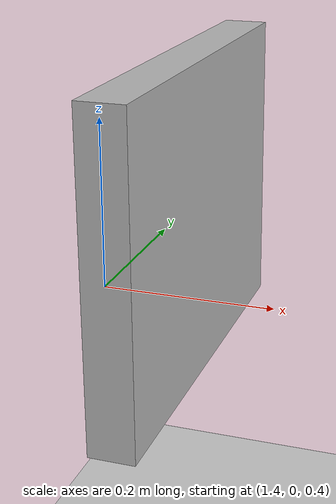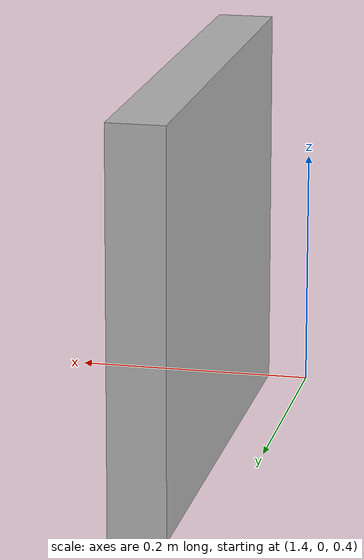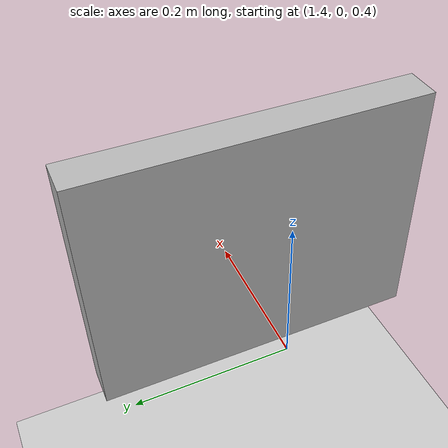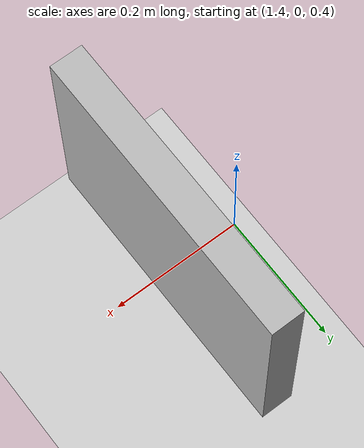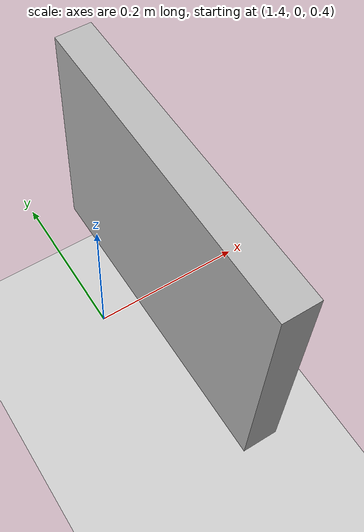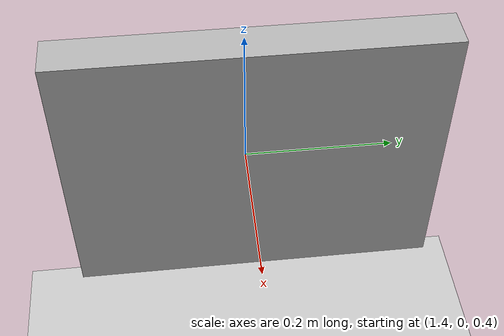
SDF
<sdf version="1.5">
 <world name="default">
  <light name="sun" type="directional">
   <pose>0 0 10 0 -0 0</pose>
   <diffuse>0.8 0.8 0.8 1</diffuse>
   <specular>0.2 0.2 0.2 1</specular>
   <attenuation>
    <range>1000</range>
    <constant>0.9</constant>
    <linear>0.01</linear>
    <quadratic>0.001</quadratic>
   </attenuation>
   <direction>-0.5 0.1 -0.9</direction>
  </light>
  <model name="ground_plane">
   <static>1</static>
   <link name="link">
    <collision name="collision">
     <geometry><plane><normal>0 0 1</normal><size>100 100</size></plane></geometry>
     <surface><friction><ode><mu>100</mu><mu2>50</mu2></ode></friction></surface>
    </collision>
    <visual name="visual">
     <cast_shadows>0</cast_shadows>
     <geometry><plane><normal>0 0 1</normal><size>100 100</size></plane></geometry>
     <material>
      <script><uri>file://media/materials/scripts/gazebo.material</uri><name>Gazebo/Grey</name></script>
     </material>
    </visual>
    <velocity_decay><linear>0</linear><angular>0</angular></velocity_decay>
   </link>
  </model>
  <physics type="ode">
   <max_step_size>0.001</max_step_size>
   <real_time_factor>1</real_time_factor>
   <real_time_update_rate>1000</real_time_update_rate>
   <gravity>0 0 -9.8</gravity>
   <magnetic_field>5.5645e-06 2.28758e-05 -4.23884e-05</magnetic_field>
  </physics>
  <scene><ambient>0.4 0.4 0.4 1</ambient><background>0.7 0.7 0.7 1</background><shadows>1</shadows></scene>
  <spherical_coordinates>
   <surface_model>EARTH_WGS84</surface_model>
   <latitude_deg>0</latitude_deg>
   <longitude_deg>0</longitude_deg>
   <elevation>0</elevation>
   <heading_deg>0</heading_deg>
  </spherical_coordinates>
  <model name="checkerboard1">
   <static>1</static>
   <link name="square_01">
    <visual name="visual">
     <geometry><box><size>0.35 0.45 0.05</size></box></geometry>
     <material>
      <script><uri>model://checkerboard_textured_1</uri><name>Checkerboard/Diffuse</name></script>
     </material>
    </visual>
    <velocity_decay><linear>0</linear><angular>0</angular></velocity_decay>
   </link>
   <pose>1.5 0 0.5 3.14159 1.57079 3.14159</pose>
  </model>
 </world>
</sdf>
